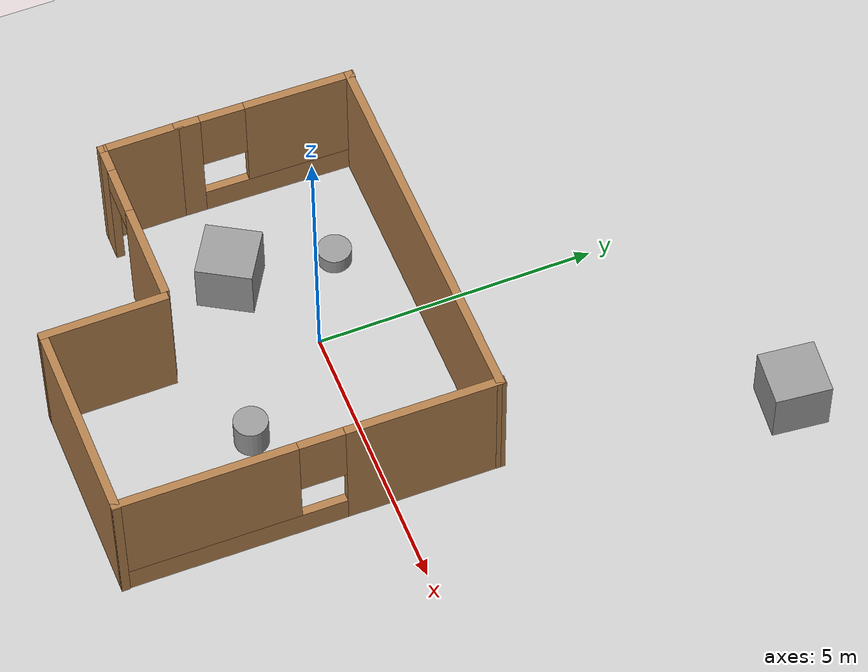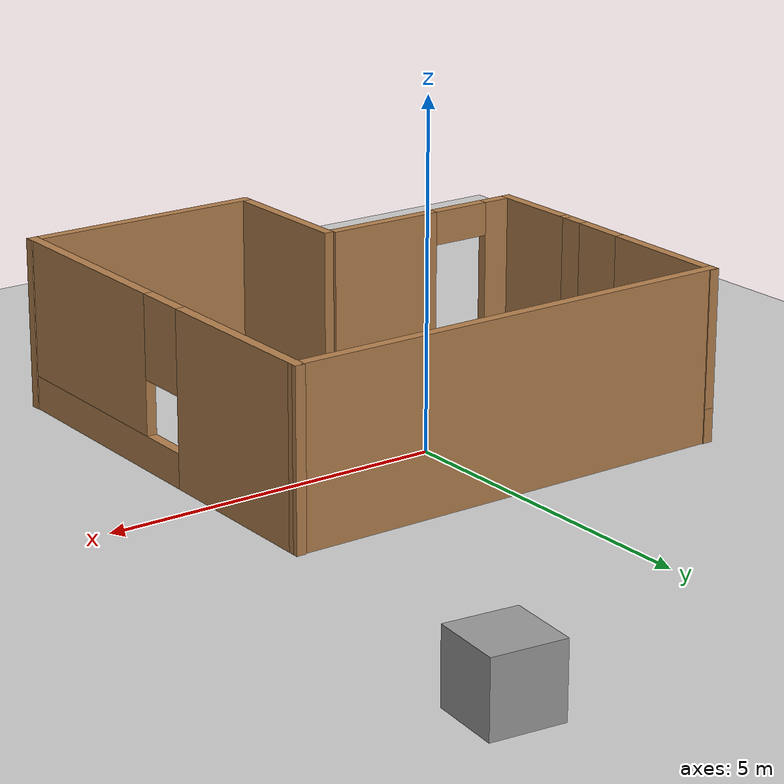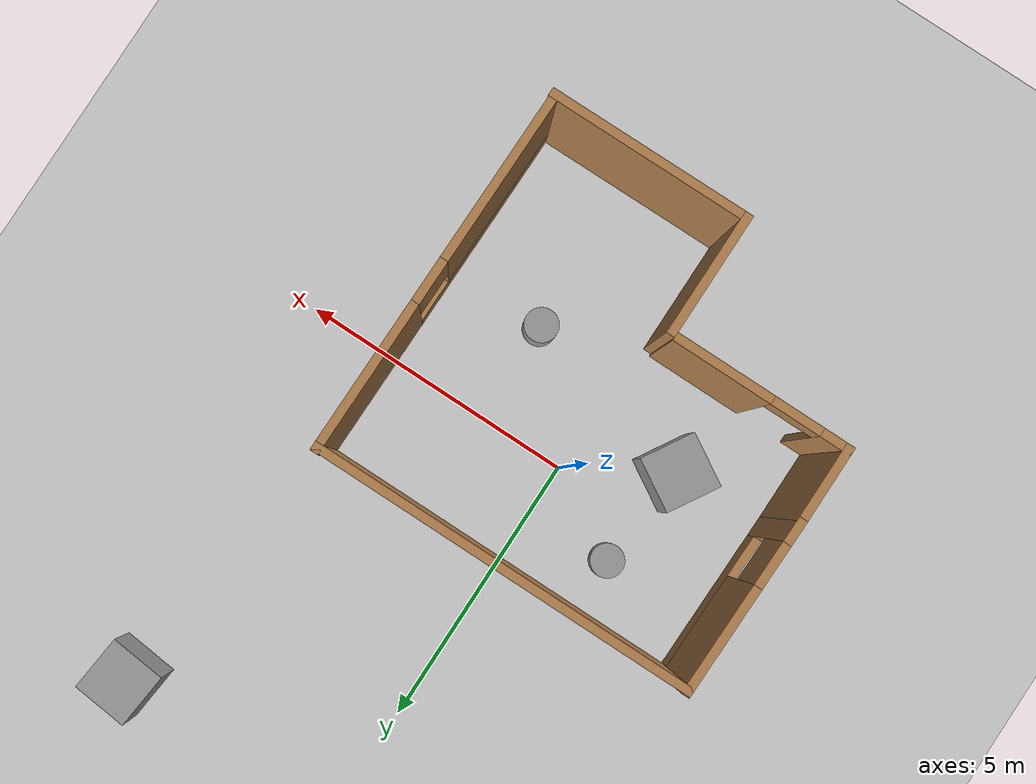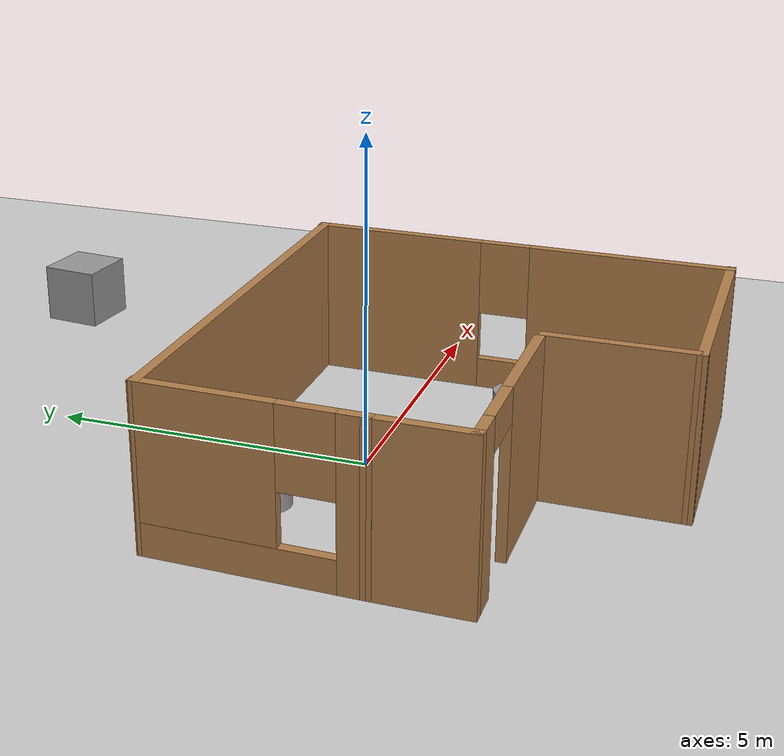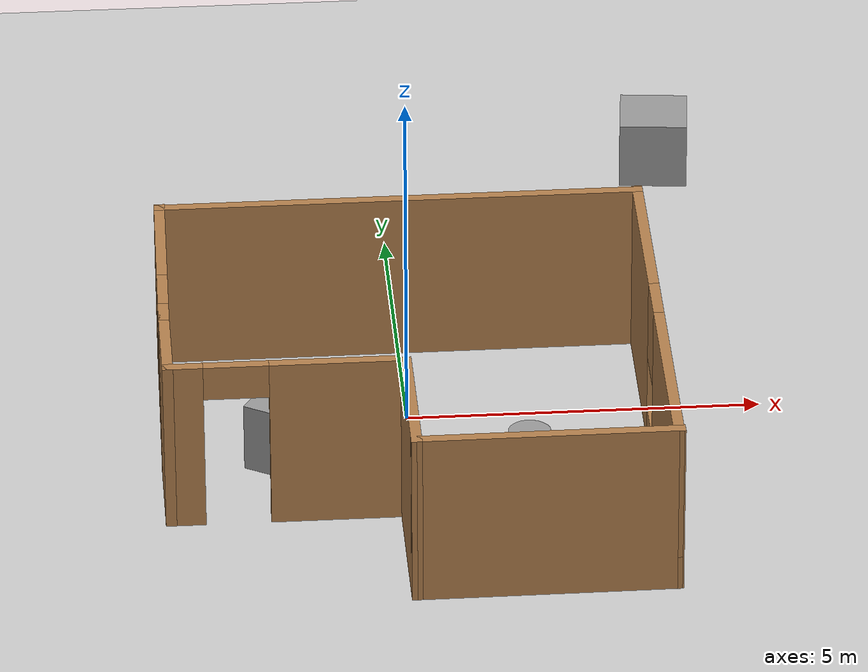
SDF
<sdf version="1.7">
 <world name="default">
  <light name="sun" type="directional">
   <pose>0 0 10 0 -0 0</pose>
   <diffuse>0.8 0.8 0.8 1</diffuse>
   <specular>0.2 0.2 0.2 1</specular>
   <attenuation>
    <range>1000</range>
    <constant>0.9</constant>
    <linear>0.01</linear>
    <quadratic>0.001</quadratic>
   </attenuation>
   <direction>-0.5 0.1 -0.9</direction>
   <spot><inner_angle>0</inner_angle><outer_angle>0</outer_angle><falloff>0</falloff></spot>
  </light>
  <model name="ground_plane">
   <static>1</static>
   <link name="link">
    <collision name="collision">
     <geometry><plane><normal>0 0 1</normal><size>100 100</size></plane></geometry>
     <surface>
      <contact><collide_bitmask>65535</collide_bitmask></contact>
      <friction><ode><mu>100</mu><mu2>50</mu2></ode></friction>
     </surface>
    </collision>
    <visual name="visual">
     <cast_shadows>0</cast_shadows>
     <geometry><plane><normal>0 0 1</normal><size>100 100</size></plane></geometry>
     <material>
      <script><uri>file://media/materials/scripts/gazebo.material</uri><name>Gazebo/Grey</name></script>
     </material>
    </visual>
   </link>
  </model>
  <gravity>0 0 -9.8</gravity>
  <magnetic_field>6e-06 2.3e-05 -4.2e-05</magnetic_field>
  <atmosphere type="adiabatic"/>
  <physics type="ode">
   <max_step_size>0.001</max_step_size>
   <real_time_factor>1</real_time_factor>
   <real_time_update_rate>1000</real_time_update_rate>
  </physics>
  <scene><ambient>0.4 0.4 0.4 1</ambient><background>0.7 0.7 0.7 1</background><shadows>1</shadows></scene>
  <audio><device>default</device></audio>
  <spherical_coordinates>
   <surface_model>EARTH_WGS84</surface_model>
   <latitude_deg>2.98858</latitude_deg>
   <longitude_deg>101.724</longitude_deg>
   <elevation>0</elevation>
   <heading_deg>0</heading_deg>
  </spherical_coordinates>
  <model name="unit_box">
   <pose>4.16219 6.94482 0.499999 -5e-06 -3e-06 -0.103511</pose>
   <link name="link">
    <inertial>
     <mass>1</mass>
     <inertia>
      <ixx>0.166667</ixx>
      <ixy>0</ixy>
      <ixz>0</ixz>
      <iyy>0.166667</iyy>
      <iyz>0</iyz>
      <izz>0.166667</izz>
     </inertia>
    </inertial>
    <collision name="collision"><geometry><box><size>1 1 1</size></box></geometry></collision>
    <visual name="visual">
     <geometry><box><size>1 1 1</size></box></geometry>
     <material>
      <script><name>Gazebo/Grey</name><uri>file://media/materials/scripts/gazebo.material</uri></script>
     </material>
    </visual>
   </link>
  </model>
  <model name="house">
   <pose>-0.00228 -1.39466 0 0 -0 0</pose>
   <link name="Wall_0">
    <pose>-1.87323 -1.16463 0 0 -0 3.14159</pose>
    <visual name="Wall_0_Visual_0">
     <pose>-0.7275 0 1.25 0 -0 0</pose>
     <geometry><box><size>1.795 0.15 2.5</size></box></geometry>
     <material>
      <script><uri>file://media/materials/scripts/gazebo.material</uri><name>Gazebo/Wood</name></script>
      <ambient>1 1 1 1</ambient>
     </material>
     <meta><layer>0</layer></meta>
    </visual>
    <collision name="Wall_0_Collision_0">
     <geometry><box><size>1.795 0.15 2.5</size></box></geometry>
     <pose>-0.7275 0 1.25 0 -0 0</pose>
    </collision>
    <visual name="Wall_0_Visual_1">
     <pose>1.3475 0 1.25 0 -0 0</pose>
     <geometry><box><size>0.555 0.15 2.5</size></box></geometry>
     <material>
      <script><uri>file://media/materials/scripts/gazebo.material</uri><name>Gazebo/Wood</name></script>
      <ambient>1 1 1 1</ambient>
     </material>
     <meta><layer>0</layer></meta>
    </visual>
    <collision name="Wall_0_Collision_1">
     <geometry><box><size>0.555 0.15 2.5</size></box></geometry>
     <pose>1.3475 0 1.25 0 -0 0</pose>
    </collision>
    <visual name="Wall_0_Visual_2">
     <pose>0.62 0 2.25 0 -0 0</pose>
     <geometry><box><size>0.9 0.15 0.5</size></box></geometry>
     <material>
      <script><uri>file://media/materials/scripts/gazebo.material</uri><name>Gazebo/Wood</name></script>
      <ambient>1 1 1 1</ambient>
     </material>
     <meta><layer>0</layer></meta>
    </visual>
    <collision name="Wall_0_Collision_2">
     <geometry><box><size>0.9 0.15 0.5</size></box></geometry>
     <pose>0.62 0 2.25 0 -0 0</pose>
    </collision>
   </link>
   <link name="Wall_1">
    <collision name="Wall_1_Collision">
     <geometry><box><size>1.5 0.15 2.5</size></box></geometry>
     <pose>0 0 1.25 0 -0 0</pose>
    </collision>
    <visual name="Wall_1_Visual">
     <pose>0 0 1.25 0 -0 0</pose>
     <geometry><box><size>1.5 0.15 2.5</size></box></geometry>
     <material>
      <script><uri>file://media/materials/scripts/gazebo.material</uri><name>Gazebo/Wood</name></script>
      <ambient>1 1 1 1</ambient>
     </material>
     <meta><layer>0</layer></meta>
    </visual>
    <pose>-3.42324 -0.489634 0 0 -0 1.5708</pose>
   </link>
   <link name="Wall_10">
    <collision name="Wall_10_Collision">
     <geometry><box><size>3.69451 0.15 2.5</size></box></geometry>
     <pose>0 0 1.25 0 -0 0</pose>
    </collision>
    <visual name="Wall_10_Visual">
     <pose>0 0 1.25 0 -0 0</pose>
     <geometry><box><size>3.69451 0.15 2.5</size></box></geometry>
     <material>
      <script><uri>file://media/materials/scripts/gazebo.material</uri><name>Gazebo/Wood</name></script>
      <ambient>1 1 1 1</ambient>
     </material>
     <meta><layer>0</layer></meta>
    </visual>
    <pose>1.599 -3.30589 0 0 -0 -3.13666</pose>
   </link>
   <link name="Wall_11">
    <collision name="Wall_11_Collision">
     <geometry><box><size>2.25 0.15 2.5</size></box></geometry>
     <pose>0 0 1.25 0 -0 0</pose>
    </collision>
    <visual name="Wall_11_Visual">
     <pose>0 0 1.25 0 -0 0</pose>
     <geometry><box><size>2.25 0.15 2.5</size></box></geometry>
     <material>
      <script><uri>file://media/materials/scripts/gazebo.material</uri><name>Gazebo/Wood</name></script>
      <ambient>1 1 1 1</ambient>
     </material>
     <meta><layer>0</layer></meta>
    </visual>
    <pose>-0.173235 -2.26463 0 0 -0 1.5708</pose>
   </link>
   <link name="Wall_6">
    <pose>-3.397 1.74104 0 0 -0 1.55393</pose>
    <visual name="Wall_6_Visual_0">
     <pose>-1.4009 0 1.25 0 -0 0</pose>
     <geometry><box><size>0.460009 0.15 2.5</size></box></geometry>
     <material>
      <script><uri>file://media/materials/scripts/gazebo.material</uri><name>Gazebo/Wood</name></script>
      <ambient>1 1 1 1</ambient>
     </material>
     <meta><layer>0</layer></meta>
    </visual>
    <collision name="Wall_6_Collision_0">
     <geometry><box><size>0.460009 0.15 2.5</size></box></geometry>
     <pose>-1.4009 0 1.25 0 -0 0</pose>
    </collision>
    <visual name="Wall_6_Visual_1">
     <pose>0.230005 0 0.25 0 -0 0</pose>
     <geometry><box><size>2.80179 0.15 0.5</size></box></geometry>
     <material>
      <script><uri>file://media/materials/scripts/gazebo.material</uri><name>Gazebo/Wood</name></script>
      <ambient>1 1 1 1</ambient>
     </material>
     <meta><layer>0</layer></meta>
    </visual>
    <collision name="Wall_6_Collision_1">
     <geometry><box><size>2.80179 0.15 0.5</size></box></geometry>
     <pose>0.230005 0 0.25 0 -0 0</pose>
    </collision>
    <visual name="Wall_6_Visual_2">
     <pose>0.630005 0 1.5 0 -0 0</pose>
     <geometry><box><size>2.00179 0.15 2</size></box></geometry>
     <material>
      <script><uri>file://media/materials/scripts/gazebo.material</uri><name>Gazebo/Wood</name></script>
      <ambient>1 1 1 1</ambient>
     </material>
     <meta><layer>0</layer></meta>
    </visual>
    <collision name="Wall_6_Collision_2">
     <geometry><box><size>2.00179 0.15 2</size></box></geometry>
     <pose>0.630005 0 1.5 0 -0 0</pose>
    </collision>
    <visual name="Wall_6_Visual_3">
     <pose>-0.770891 0 1.9 0 -0 0</pose>
     <geometry><box><size>0.8 0.15 1.2</size></box></geometry>
     <material>
      <script><uri>file://media/materials/scripts/gazebo.material</uri><name>Gazebo/Wood</name></script>
      <ambient>1 1 1 1</ambient>
     </material>
     <meta><layer>0</layer></meta>
    </visual>
    <collision name="Wall_6_Collision_3">
     <geometry><box><size>0.8 0.15 1.2</size></box></geometry>
     <pose>-0.770891 0 1.9 0 -0 0</pose>
    </collision>
   </link>
   <link name="Wall_7">
    <collision name="Wall_7_Collision">
     <geometry><box><size>6.94449 0.15 2.5</size></box></geometry>
     <pose>0 0 1.25 0 -0 0</pose>
    </collision>
    <visual name="Wall_7_Visual">
     <pose>0 0 1.25 0 -0 0</pose>
     <geometry><box><size>6.94449 0.15 2.5</size></box></geometry>
     <material>
      <script><uri>file://media/materials/scripts/gazebo.material</uri><name>Gazebo/Wood</name></script>
      <ambient>1 1 1 1</ambient>
     </material>
     <meta><layer>0</layer></meta>
    </visual>
    <pose>0.026467 3.28798 0 0 -0 0.002574</pose>
   </link>
   <link name="Wall_9">
    <pose>3.38872 0.008535 0 0 -0 -1.58138</pose>
    <visual name="Wall_9_Visual_0">
     <pose>-1.9862 0 1.25 0 -0 0</pose>
     <geometry><box><size>2.78933 0.15 2.5</size></box></geometry>
     <material>
      <script><uri>file://media/materials/scripts/gazebo.material</uri><name>Gazebo/Wood</name></script>
      <ambient>1 1 1 1</ambient>
     </material>
     <meta><layer>0</layer></meta>
    </visual>
    <collision name="Wall_9_Collision_0">
     <geometry><box><size>2.78933 0.15 2.5</size></box></geometry>
     <pose>-1.9862 0 1.25 0 -0 0</pose>
    </collision>
    <visual name="Wall_9_Visual_1">
     <pose>1.39467 0 0.25 0 -0 0</pose>
     <geometry><box><size>3.97239 0.15 0.5</size></box></geometry>
     <material>
      <script><uri>file://media/materials/scripts/gazebo.material</uri><name>Gazebo/Wood</name></script>
      <ambient>1 1 1 1</ambient>
     </material>
     <meta><layer>0</layer></meta>
    </visual>
    <collision name="Wall_9_Collision_1">
     <geometry><box><size>3.97239 0.15 0.5</size></box></geometry>
     <pose>1.39467 0 0.25 0 -0 0</pose>
    </collision>
    <visual name="Wall_9_Visual_2">
     <pose>1.79467 0 1.5 0 -0 0</pose>
     <geometry><box><size>3.17239 0.15 2</size></box></geometry>
     <material>
      <script><uri>file://media/materials/scripts/gazebo.material</uri><name>Gazebo/Wood</name></script>
      <ambient>1 1 1 1</ambient>
     </material>
     <meta><layer>0</layer></meta>
    </visual>
    <collision name="Wall_9_Collision_2">
     <geometry><box><size>3.17239 0.15 2</size></box></geometry>
     <pose>1.79467 0 1.5 0 -0 0</pose>
    </collision>
    <visual name="Wall_9_Visual_3">
     <pose>-0.191528 0 1.9 0 -0 0</pose>
     <geometry><box><size>0.8 0.15 1.2</size></box></geometry>
     <material>
      <script><uri>file://media/materials/scripts/gazebo.material</uri><name>Gazebo/Wood</name></script>
      <ambient>1 1 1 1</ambient>
     </material>
     <meta><layer>0</layer></meta>
    </visual>
    <collision name="Wall_9_Collision_3">
     <geometry><box><size>0.8 0.15 1.2</size></box></geometry>
     <pose>-0.191528 0 1.9 0 -0 0</pose>
    </collision>
   </link>
   <static>1</static>
  </model>
  <model name="small_cylinder">
   <link name="link">
    <inertial>
     <mass>1</mass>
     <inertia><ixx>0.145833</ixx><ixy>0</ixy><ixz>0</ixz><iyy>0.145833</iyy><iyz>0</iyz><izz>0.125</izz></inertia>
    </inertial>
    <visual name="visual">
     <geometry><cylinder><radius>0.3</radius><length>0.6</length></cylinder></geometry>
     <material>
      <script><name>Gazebo/Grey</name><uri>file://media/materials/scripts/gazebo.material</uri></script>
      <shader type="pixel"><normal_map>__default__</normal_map></shader>
      <ambient>0.3 0.3 0.3 1</ambient>
      <diffuse>0.7 0.7 0.7 1</diffuse>
      <specular>0.01 0.01 0.01 1</specular>
      <emissive>0 0 0 1</emissive>
     </material>
    </visual>
    <collision name="collision">
     <geometry><cylinder><radius>0.5</radius><length>1</length></cylinder></geometry>
     <surface>
      <friction>
       <ode><mu>1</mu><mu2>1</mu2><fdir1>0 0 0</fdir1><slip1>0</slip1><slip2>0</slip2></ode>
       <torsional>
        <coefficient>1</coefficient>
        <patch_radius>0</patch_radius>
        <surface_radius>0</surface_radius>
        <use_patch_radius>1</use_patch_radius>
        <ode><slip>0</slip></ode>
       </torsional>
      </friction>
      <bounce><restitution_coefficient>0</restitution_coefficient><threshold>1e+06</threshold></bounce>
      <contact>
       <collide_without_contact>0</collide_without_contact>
       <collide_without_contact_bitmask>1</collide_without_contact_bitmask>
       <collide_bitmask>1</collide_bitmask>
       <ode>
        <soft_cfm>0</soft_cfm>
        <soft_erp>0.2</soft_erp>
        <kp>1e+13</kp>
        <kd>1</kd>
        <max_vel>0.01</max_vel>
        <min_depth>0</min_depth>
       </ode>
       <bullet>
        <split_impulse>1</split_impulse>
        <split_impulse_penetration_threshold>-0.01</split_impulse_penetration_threshold>
        <soft_cfm>0</soft_cfm>
        <soft_erp>0.2</soft_erp>
        <kp>1e+13</kp>
        <kd>1</kd>
       </bullet>
      </contact>
     </surface>
    </collision>
   </link>
   <static>0</static>
   <pose>1.58766 -1.80651 0.5 0 -0 0</pose>
  </model>
  <model name="small_cylinder_0">
   <link name="link">
    <inertial>
     <mass>1</mass>
     <inertia><ixx>0.145833</ixx><ixy>0</ixy><ixz>0</ixz><iyy>0.145833</iyy><iyz>0</iyz><izz>0.125</izz></inertia>
    </inertial>
    <visual name="visual">
     <geometry><cylinder><radius>0.3</radius><length>0.6</length></cylinder></geometry>
     <material>
      <script><name>Gazebo/Grey</name><uri>file://media/materials/scripts/gazebo.material</uri></script>
      <shader type="pixel"><normal_map>__default__</normal_map></shader>
      <ambient>0.3 0.3 0.3 1</ambient>
      <diffuse>0.7 0.7 0.7 1</diffuse>
      <specular>0.01 0.01 0.01 1</specular>
      <emissive>0 0 0 1</emissive>
     </material>
    </visual>
    <collision name="collision">
     <geometry><cylinder><radius>0.5</radius><length>1</length></cylinder></geometry>
     <surface>
      <friction>
       <ode><mu>1</mu><mu2>1</mu2><fdir1>0 0 0</fdir1><slip1>0</slip1><slip2>0</slip2></ode>
       <torsional>
        <coefficient>1</coefficient>
        <patch_radius>0</patch_radius>
        <surface_radius>0</surface_radius>
        <use_patch_radius>1</use_patch_radius>
        <ode><slip>0</slip></ode>
       </torsional>
      </friction>
      <bounce><restitution_coefficient>0</restitution_coefficient><threshold>1e+06</threshold></bounce>
      <contact>
       <collide_without_contact>0</collide_without_contact>
       <collide_without_contact_bitmask>1</collide_without_contact_bitmask>
       <collide_bitmask>1</collide_bitmask>
       <ode>
        <soft_cfm>0</soft_cfm>
        <soft_erp>0.2</soft_erp>
        <kp>1e+13</kp>
        <kd>1</kd>
        <max_vel>0.01</max_vel>
        <min_depth>0</min_depth>
       </ode>
       <bullet>
        <split_impulse>1</split_impulse>
        <split_impulse_penetration_threshold>-0.01</split_impulse_penetration_threshold>
        <soft_cfm>0</soft_cfm>
        <soft_erp>0.2</soft_erp>
        <kp>1e+13</kp>
        <kd>1</kd>
       </bullet>
      </contact>
     </surface>
    </collision>
   </link>
   <static>0</static>
   <pose>-1.53641 0.86667 0 0 -0 0</pose>
  </model>
  <model name="unit_box_0">
   <pose>-1.66542 -0.998672 0.5 0 0 -0.539461</pose>
   <link name="link">
    <inertial>
     <mass>1</mass>
     <inertia>
      <ixx>0.166667</ixx>
      <ixy>0</ixy>
      <ixz>0</ixz>
      <iyy>0.166667</iyy>
      <iyz>0</iyz>
      <izz>0.166667</izz>
     </inertia>
    </inertial>
    <collision name="collision"><geometry><box><size>1 1 1</size></box></geometry></collision>
    <visual name="visual">
     <geometry><box><size>1 1 1</size></box></geometry>
     <material>
      <script><name>Gazebo/Grey</name><uri>file://media/materials/scripts/gazebo.material</uri></script>
     </material>
    </visual>
   </link>
  </model>
 </world>
</sdf>
